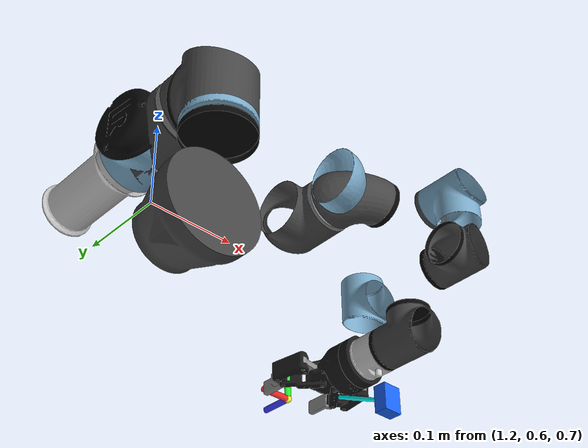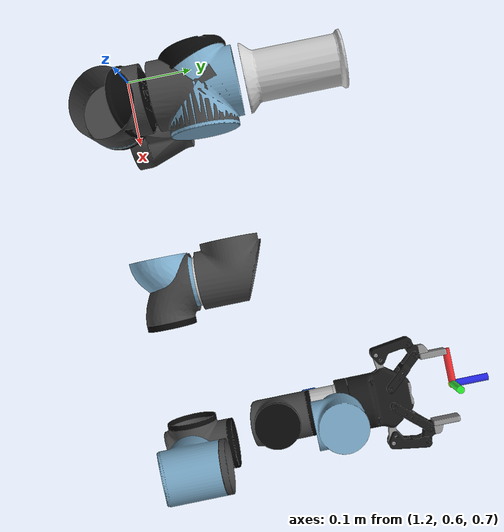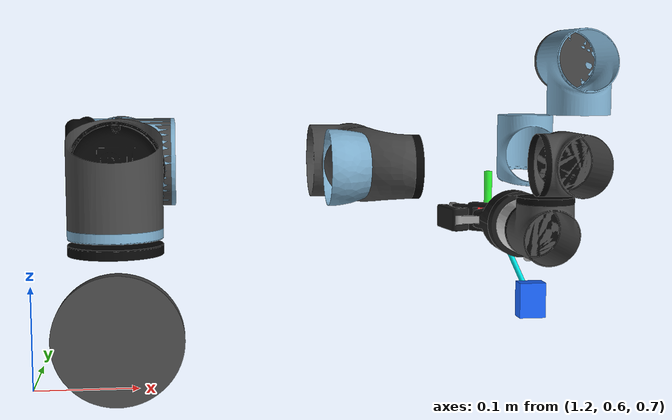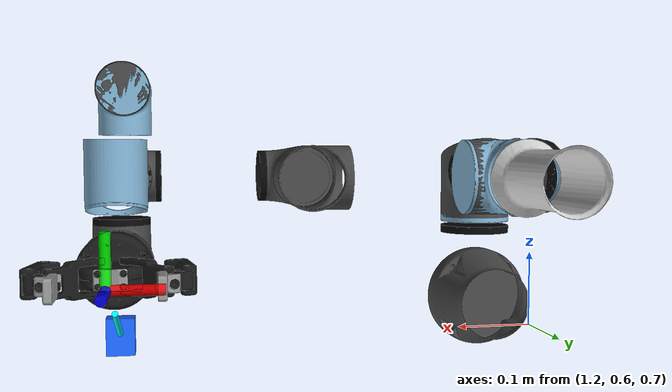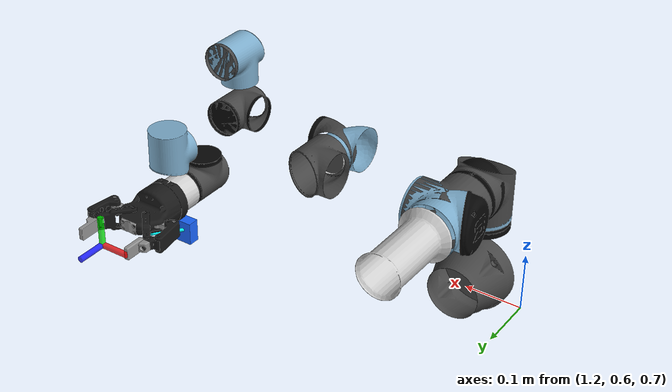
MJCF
<mujoco model="ur3e_robotiq">
  <compiler angle="radian" meshdir="." autolimits="true"/>

  <option integrator="implicitfast" impratio="10"/>

  <default>
    <!-- UR3E默认设置 -->
    <default class="ur3e">
      <material specular="0.5" shininess="0.25"/>
      <joint axis="0 1 0" range="-6.28319 6.28319" armature="0.1"/>
      <general gaintype="fixed" biastype="affine" ctrlrange="-6.2831 6.2831" gainprm="1000" biasprm="0 -1000 -200"/>
      <default class="size2">
        <general forcerange="-54 54"/>
      </default>
      <default class="size1">
        <default class="size1_limited">
          <joint range="-3.1415 3.1415"/>
          <general gainprm="500" biasprm="0 -500 -100" ctrlrange="-3.1415 3.1415" forcerange="-28 28"/>
        </default>
      </default>
      <default class="size0">
        <general gainprm="250" biasprm="0 -250 -50" forcerange="-9 9"/>
      </default>
      <default class="visual">
        <geom type="mesh" contype="0" conaffinity="0" group="2"/>
      </default>
      <default class="collision">
        <geom type="capsule" group="3"/>
        <default class="eef_collision">
          <geom type="cylinder"/>
        </default>
      </default>
      <site size="0.001" rgba="0.5 0.5 0.5 0.3" group="4"/>
    </default>

    <!-- Robotiq 2F85默认设置 -->
    <default class="2f85">
      <mesh scale="0.001 0.001 0.001"/>
      <general biastype="affine"/>
      <joint axis="0 0 1"/>
      <default class="driver">
        <joint range="0 0.9" armature="0.005" damping="0.1" solimplimit="0.95 0.99 0.001" solreflimit="0.005 1"/>
      </default>
      <default class="follower">
        <joint range="-0.872664 0.9" armature="0.001" solimplimit="0.95 0.99 0.001" solreflimit="0.005 1"/>
      </default>
      <default class="spring_link">
        <joint range="-0.29670597283 0.9" armature="0.001" stiffness="0.05" springref="2.62" damping="0.00125"/>
      </default>
      <default class="coupler">
        <joint range="-1.57 0" armature="0.001" solimplimit="0.95 0.99 0.001" solreflimit="0.005 1"/>
      </default>
      <default class="visual2">
        <geom type="mesh" contype="0" conaffinity="0" group="2" material="black"/>
      </default>
      <default class="collision2">
        <geom type="mesh" group="3"/>
        <default class="pad_box_0">
          <geom mass="1e-6" type="box" pos="0.043258 0 0.12" size="0.002 0.011 0.009375" friction="0.7"
                solimp="0.95 0.99 0.001" solref="0.004 1" priority="1" rgba="0.55 0.55 0.55 1"/>
        </default>
        <default class="pad_box_1">
          <geom mass="1e-6" type="box" pos="0.043258 0 0.13875" size="0.002 0.011 0.009375" friction="0.6"
                solimp="0.95 0.99 0.001" solref="0.004 1" priority="1" rgba="0.45 0.45 0.45 1"/>
        </default>
      </default>
    </default>
  </default>

  <asset>
    <!-- UR3E材质 -->
    <material class="ur3e" name="urblack" rgba="0.033 0.033 0.033 1"/>
    <material class="ur3e" name="jointgray" rgba="0.278 0.278 0.278 1"/>
    <material class="ur3e" name="linkgray" rgba="0.82 0.82 0.82 1"/>
    <material class="ur3e" name="urblue" rgba="0.49 0.678 0.8 1"/>

    <!-- Robotiq材质 -->
    <material name="metal" rgba="0.58 0.58 0.58 1"/>
    <material name="silicone" rgba="0.1882 0.1882 0.1882 1"/>
    <material name="black" specular="0.5" shininess="0.25" rgba="0.1 0.1 0.1 1"/>

    <!-- UR3E网格 -->
    <mesh file="../ur3e/assets/base_0.obj"/>
    <mesh file="../ur3e/assets/base_1.obj"/>
    <mesh file="../ur3e/assets/shoulder_0.obj"/>
    <mesh file="../ur3e/assets/shoulder_1.obj"/>
    <mesh file="../ur3e/assets/shoulder_2.obj"/>
    <mesh file="../ur3e/assets/upperarm_0.obj"/>
    <mesh file="../ur3e/assets/upperarm_1.obj"/>
    <mesh file="../ur3e/assets/upperarm_2.obj"/>
    <mesh file="../ur3e/assets/upperarm_3.obj"/>
    <mesh file="../ur3e/assets/forearm_0.obj"/>
    <mesh file="../ur3e/assets/forearm_1.obj"/>
    <mesh file="../ur3e/assets/forearm_2.obj"/>
    <mesh file="../ur3e/assets/forearm_3.obj"/>
    <mesh file="../ur3e/assets/wrist1_0.obj"/>
    <mesh file="../ur3e/assets/wrist1_1.obj"/>
    <mesh file="../ur3e/assets/wrist1_2.obj"/>
    <mesh file="../ur3e/assets/wrist2_0.obj"/>
    <mesh file="../ur3e/assets/wrist2_1.obj"/>
    <mesh file="../ur3e/assets/wrist2_2.obj"/>
    <mesh file="../ur3e/assets/wrist3.obj"/>

    <!-- Robotiq 2F85网格 -->
    <mesh name="robotiq_base" file="../robotiq_2f85_v4/assets/base.stl"/>
    <mesh name="robotiq_base_coupling" file="../robotiq_2f85_v4/assets/base_coupling.stl"/>
    <mesh name="robotiq_open_body" file="../robotiq_2f85_v4/assets/c-a01-85-open.stl"/>
    <mesh name="robotiq_driver" file="../robotiq_2f85_v4/assets/driver.stl"/>
    <mesh name="robotiq_coupler" file="../robotiq_2f85_v4/assets/coupler.stl"/>
    <mesh name="robotiq_spring_link" file="../robotiq_2f85_v4/assets/spring_link.stl"/>
    <mesh name="robotiq_follower" file="../robotiq_2f85_v4/assets/follower.stl"/>
    <mesh name="robotiq_tongue" file="../robotiq_2f85_v4/assets/tongue.stl"/>
  </asset>

  <worldbody>
    <light name="spotlight" mode="targetbodycom" target="wrist_2_link" pos="0 -1 2"/>
    <body name="ur3e_base" pos="1.28 0.6 0.745" quat="1 0 0 0" childclass="ur3e">
      <inertial mass="2.0" pos="0 0 0" diaginertia="0.0030531654454 0.0030531654454 0.005625"/>
      <geom mesh="base_0" material="urblack" class="visual"/>
      <geom mesh="base_1" material="jointgray" class="visual"/>

      <body name="shoulder_link" pos="0 0 0.163">
        <inertial mass="2.0" pos="0 0 0" diaginertia="0.008093163429399999 0.008093163429399999 0.005625"/>
        <joint name="shoulder_pan_joint" class="size2" axis="0 0 1"/>
        <geom mesh="shoulder_0" material="urblue" class="visual"/>
        <geom mesh="shoulder_1" material="urblack" class="visual"/>
        <geom mesh="shoulder_2" material="jointgray" class="visual"/>
        <geom class="collision" size="0.05 0.05" pos="0 0 -0.04"/>

        <body name="upper_arm_link" pos="0 0.12 0" quat="1 0 1 0">
          <inertial mass="3.42" pos="0 0 0.121825" diaginertia="0.021728483221103233 0.021728483221103233 0.00961875"/>
          <joint name="shoulder_lift_joint" class="size2"/>
          <geom mesh="upperarm_0" material="urblack" class="visual"/>
          <geom mesh="upperarm_1" material="urblue" class="visual"/>
          <geom mesh="upperarm_2" material="jointgray" class="visual"/>
          <geom mesh="upperarm_3" material="linkgray" class="visual"/>
          <geom class="collision" pos="0 -0.04 0" quat="1 1 0 0" size="0.05 0.05"/>
          <geom class="collision" size="0.04 0.1" pos="0 0 0.1"/>

          <body name="forearm_link" pos="0 -0.093 0.24355">
            <inertial mass="1.26" pos="0 0 0.1066" diaginertia="0.0065445675821719194 0.0065445675821719194 0.00354375"/>
            <joint name="elbow_joint" class="size1_limited"/>
            <geom mesh="forearm_0" material="urblue" class="visual"/>
            <geom mesh="forearm_1" material="linkgray" class="visual"/>
            <geom mesh="forearm_2" material="urblack" class="visual"/>
            <geom mesh="forearm_3" material="jointgray" class="visual"/>
            <geom class="collision" pos="0 0.06 0" quat="1 1 0 0" size="0.04 0.052"/>
            <geom class="collision" size="0.03 0.1" pos="0 0 0.1"/>

            <body name="wrist_1_link" pos="0 0 0.2132" quat="1 0 1 0">
              <inertial mass="0.8" pos="0 0.104 0" diaginertia="0.002084999166 0.002084999166 0.00225"/>
              <joint name="wrist_1_joint" class="size0"/>
              <geom mesh="wrist1_0" material="urblack" class="visual"/>
              <geom mesh="wrist1_1" material="urblue" class="visual"/>
              <geom mesh="wrist1_2" material="jointgray" class="visual"/>
              <geom class="collision" pos="0 0.03 0" quat="1 1 0 0" size="0.032 0.045"/>

              <body name="wrist_2_link" pos="0 0.104 0">
                <inertial mass="0.8" pos="0 0 0.1" diaginertia="0.002084999166 0.002084999166 0.00225"/>
                <joint name="wrist_2_joint" axis="0 0 1" class="size0"/>
                <geom mesh="wrist2_0" material="urblue" class="visual"/>
                <geom mesh="wrist2_1" material="urblack" class="visual"/>
                <geom mesh="wrist2_2" material="jointgray" class="visual"/>
                <geom class="collision" size="0.032 0.045" pos="0 0 0.025"/>
                <geom class="collision" pos="0 0.015 0.085" quat="1 1 0 0" size="0.032 0.035"/>

                <body name="wrist_3_link" pos="0 0 0.08535">
                  <inertial mass="0.35" pos="0 0.0771683 0" quat="1 0 0 1"
                    diaginertia="0.00013626661215999998 0.00013626661215999998 0.0001792"/>
                  <joint name="wrist_3_joint" class="size0"/>
                  <geom material="linkgray" mesh="wrist3" class="visual"/>

                  <!-- 腕部手眼相机（安装在 wrist_3_link 上） -->
                  <body name="hand_camera_link" pos="0 0.05 0.08">
                    <!-- 蓝色小盒：相机机身 -->
                    <geom name="hand_cam_body" type="box" size="0.015 0.010 0.020"
                          rgba="0.1 0.4 1.0 1.0" contype="0" conaffinity="0" group="2" density="0"/>
                    <!-- 青色细线：视线方向（朝指尖方向 (0,+Y,-Z)） -->
                    <geom name="hand_cam_dir" type="cylinder" fromto="0 0 0  0 0.09 -0.04"
                          size="0.003" rgba="0 1 1 1.0" contype="0" conaffinity="0" group="2" density="0"/>
                    <!-- 红色小点：光心 -->
                    <geom name="hand_cam_origin" type="sphere" size="0.006"
                          rgba="1 0 0 1.0" contype="0" conaffinity="0" group="2" density="0"/>
                    <camera name="hand_camera" mode="fixed" fovy="60" xyaxes="1 0 0  0 0.38 0.92"/>
                  </body>

                  <!-- Robotiq 2F85机械手安装在UR3E末端 -->
                  <body name="robotiq_base" pos="0 0.09 0" euler="-1.57 0 0" childclass="2f85">
                    <inertial mass="0.777441" pos="0 -2.70394e-05 0.0354675" quat="1 -0.00152849 0 0"
                              diaginertia="0.000260285 0.000225381 0.000152708"/>
                    <geom class="visual2" pos="0 0 0.0108" quat="0 0 0 1" mesh="robotiq_base"/>
                    <geom class="visual2" pos="0 0 0.004" quat="1 -1 0 0" mesh="robotiq_base_coupling"/>
                    <geom class="visual2" pos="0 0 0.0108" quat="1 0 0 0" material="metal" mesh="robotiq_open_body"/>
                    <geom class="collision2" mesh="robotiq_base"/>

                    <!-- TCP: 两指抓取中心，z 沿夹爪进入方向 -->
                    <body name="gripper_tcp" pos="0 0 0.16">
                      <site name="gripper_tcp_site" pos="0 0 0" size="0.006" rgba="1 1 0 0.8" group="2"/>
                      <!-- 可视化 TCP 坐标系 (长度设为 5cm，粗细为 2mm) -->
                      <!-- X 轴 (红色) -->
                      <geom name="tcp_x" type="cylinder" fromto="0 0 0  0.05 0 0" size="0.005" rgba="1 0 0 0.8" contype="0" conaffinity="0" group="2"/>
                      <!-- Y 轴 (绿色) -->
                      <geom name="tcp_y" type="cylinder" fromto="0 0 0  0 0.05 0" size="0.005" rgba="0 1 0 0.8" contype="0" conaffinity="0" group="2"/>
                      <!-- Z 轴 (蓝色) -->
                      <geom name="tcp_z" type="cylinder" fromto="0 0 0  0 0 0.05" size="0.005" rgba="0 0 1 0.8" contype="0" conaffinity="0" group="2"/>
                    </body>

                    <body name="left_driver" pos="-0.0306011 0.00475 0.0657045" quat="1 -1 0 0">
                      <inertial mass="0.00899563" pos="0 0.0177547 0.00107314" quat="0.681301 0.732003 0 0"
                                diaginertia="1.72352e-06 1.60906e-06 3.22006e-07"/>
                      <joint name="left_driver_joint" class="driver"/>
                      <geom class="visual2" pos="0.0306011 0.0549045 -0.0047" quat="1 1 0 0" material="metal" mesh="robotiq_driver"/>
                      <geom class="collision2" pos="0.0306011 0.0549045 -0.0047" quat="1 1 0 0" mesh="robotiq_driver"/>
                      <body name="left_coupler" pos="-0.0314249 0.00453223 -0.0102" quat="0 0 0 1">
                        <inertial mass="0.0140974" pos="0 0.00301209 0.0232175" quat="0.705636 -0.0455904 0.0455904 0.705636"
                                  diaginertia="4.16206e-06 3.52216e-06 8.88131e-07"/>
                        <geom class="visual2" pos="-0.062026 -0.0503723 0.0055" quat="1 -1 0 0" mesh="robotiq_coupler"/>
                        <geom class="collision2" pos="-0.062026 -0.0503723 0.0055" quat="1 -1 0 0" mesh="robotiq_coupler"/>
                      </body>
                    </body>

                    <body name="left_spring_link" pos="-0.0127 -0.012 0.07222" quat="1 -1 0 0">
                      <inertial mass="0.0221642" pos="-8.65005e-09 0.0181624 0.0212658" quat="0.663403 -0.244737 0.244737 0.663403"
                                diaginertia="8.96853e-06 6.71733e-06 2.63931e-06"/>
                      <joint name="left_spring_link_joint" class="spring_link"/>
                      <geom class="visual2" pos="0.0127 0.06142 0.01205" quat="1 1 0 0" mesh="robotiq_spring_link"/>
                      <geom class="collision2" pos="0.0127 0.06142 0.01205" quat="1 1 0 0" mesh="robotiq_spring_link"/>
                      <body name="left_follower" pos="-0.0382079 -0.0425003 0.00295" quat="0 -1 -1.90231e-05 0">
                        <inertial mass="0.0125222" pos="0 -0.011046 0.0124786" quat="1 0.1664 0 0"
                                  diaginertia="2.67415e-06 2.4559e-06 6.02031e-07"/>
                        <joint name="left_follower_joint" class="follower"/>
                        <geom class="visual2" pos="0.0509079 -0.10392 -0.0091" quat="1 -1 0 0" mesh="robotiq_follower"/>
                        <geom class="visual2" pos="0.0509079 -0.10392 -0.0091" quat="1 -1 0 0" material="metal" mesh="robotiq_tongue"/>
                        <geom class="collision2" pos="0.0509079 -0.10392 -0.0091" quat="1 -1 0 0" mesh="robotiq_follower"/>
                        <geom class="collision2" pos="0.0509079 -0.10392 -0.0091" quat="1 -1 0 0" mesh="robotiq_tongue"/>
                        <body name="left_pad" pos="-0.0377897 -0.103916 -0.0091" quat="1 -1 0 0">
                          <geom class="pad_box_0" name="left_pad1"/>
                          <geom class="pad_box_1" name="left_pad2"/>
                        </body>
                      </body>
                    </body>

                    <body name="right_driver" pos="0.0306011 -0.00475 0.0657045" quat="0 0 -1 1">
                      <inertial mass="0.00899563" pos="2.96931e-12 0.0177547 0.00107314" quat="0.681301 0.732003 0 0"
                                diaginertia="1.72352e-06 1.60906e-06 3.22006e-07"/>
                      <joint name="right_driver_joint" class="driver"/>
                      <geom class="visual2" pos="0.0306011 0.0549045 -0.0047" quat="1 1 0 0" material="metal" mesh="robotiq_driver"/>
                      <geom class="collision2" pos="0.0306011 0.0549045 -0.0047" quat="1 1 0 0" mesh="robotiq_driver"/>
                      <body name="right_coupler" pos="-0.0314249 0.00453223 -0.0102" quat="0 0 0 1">
                        <inertial mass="0.0140974" pos="0 0.00301209 0.0232175" quat="0.705636 -0.0455904 0.0455904 0.705636"
                                  diaginertia="4.16206e-06 3.52216e-06 8.88131e-07"/>
                        <geom class="visual2" pos="-0.062026 -0.0503723 0.0055" quat="1 -1 0 0" mesh="robotiq_coupler"/>
                        <geom class="collision2" pos="-0.062026 -0.0503723 0.0055" quat="1 -1 0 0" mesh="robotiq_coupler"/>
                      </body>
                    </body>

                    <body name="right_spring_link" pos="0.0127 0.012 0.07222" quat="0 0 -1 1">
                      <inertial mass="0.0221642" pos="-8.65005e-09 0.0181624 0.0212658" quat="0.663403 -0.244737 0.244737 0.663403"
                                diaginertia="8.96853e-06 6.71733e-06 2.63931e-06"/>
                      <joint name="right_spring_link_joint" class="spring_link"/>
                      <geom class="visual2" pos="0.0127 0.06142 0.01205" quat="1 1 0 0" mesh="robotiq_spring_link"/>
                      <geom class="collision2" pos="0.0127 0.06142 0.01205" quat="1 1 0 0" mesh="robotiq_spring_link"/>
                      <body name="right_follower" pos="-0.0382079 -0.0425003 0.00295" quat="0 -1 0 0">
                        <inertial mass="0.0125222" pos="0 -0.011046 0.0124786" quat="1 0.1664 0 0"
                                  diaginertia="2.67415e-06 2.4559e-06 6.02031e-07"/>
                        <joint name="right_follower_joint" class="follower"/>
                        <geom class="visual2" pos="0.0509079 -0.10392 -0.0091" quat="1 -1 0 0" material="metal" mesh="robotiq_tongue"/>
                        <geom class="visual2" pos="0.0509079 -0.10392 -0.0091" quat="1 -1 0 0" mesh="robotiq_follower"/>
                        <geom class="collision2" pos="0.0509079 -0.10392 -0.0091" quat="1 -1 0 0" mesh="robotiq_tongue"/>
                        <geom class="collision2" pos="0.0509079 -0.10392 -0.0091" quat="1 -1 0 0" mesh="robotiq_follower"/>
                        <body name="right_pad" pos="-0.0377897 -0.103916 -0.0091" quat="1 -1 0 0">
                          <geom class="pad_box_0" name="right_pad1"/>
                          <geom class="pad_box_1" name="right_pad2"/>
                        </body>
                      </body>
                    </body>
                  </body>
                </body>
              </body>
            </body>
          </body>
        </body>
      </body>
    </body>
  </worldbody>

  <!-- 碰撞排除配置 -->
  <contact>
    <!-- UR3E内部碰撞排除 -->

    <!-- Robotiq内部碰撞排除 -->
    <exclude body1="robotiq_base" body2="left_driver"/>
    <exclude body1="robotiq_base" body2="right_driver"/>
    <exclude body1="robotiq_base" body2="left_spring_link"/>
    <exclude body1="robotiq_base" body2="right_spring_link"/>
    <exclude body1="right_coupler" body2="right_follower"/>
    <exclude body1="left_coupler" body2="left_follower"/>

    <!-- 跨系统碰撞排除 -->
    <exclude body1="wrist_3_link" body2="robotiq_base"/>
    <exclude body1="wrist_3_link" body2="left_driver"/>
    <exclude body1="wrist_3_link" body2="right_driver"/>
    <exclude body1="wrist_3_link" body2="left_spring_link"/>
    <exclude body1="wrist_3_link" body2="right_spring_link"/>
  </contact>

  <!-- Robotiq腱传动系统 -->
  <tendon>
    <fixed name="split">
      <joint joint="right_driver_joint" coef="0.485"/>
      <joint joint="left_driver_joint" coef="0.485"/>
    </fixed>
  </tendon>

  <!-- Robotiq等式约束 -->
  <equality>
    <connect anchor="-0.0179014 -0.00651468 0.0044" body1="right_follower" body2="right_coupler" solimp="0.95 0.99 0.001" solref="0.005 1"/>
    <connect anchor="-0.0179014 -0.00651468 0.0044" body1="left_follower" body2="left_coupler" solimp="0.95 0.99 0.001" solref="0.005 1"/>
    <joint joint1="right_driver_joint" joint2="left_driver_joint" polycoef="0 1 0 0 0" solimp="0.95 0.99 0.001" solref="0.005 1"/>
  </equality>

  <!-- 驱动器配置 -->
  <actuator>
    <!-- UR3E驱动器 -->
    <general class="size2" name="shoulder_pan" joint="shoulder_pan_joint"/>
    <general class="size2" name="shoulder_lift" joint="shoulder_lift_joint"/>
    <general class="size1_limited" name="elbow" joint="elbow_joint"/>
    <general class="size0" name="wrist_1" joint="wrist_1_joint"/>
    <general class="size0" name="wrist_2" joint="wrist_2_joint"/>
    <general class="size0" name="wrist_3" joint="wrist_3_joint"/>

    <!-- Robotiq驱动器：保持 0~0.6 控制范围，兼容现有 teleop trigger 映射 -->
    <general class="2f85" name="fingers_actuator" tendon="split" forcerange="-50 50" ctrlrange="0 0.6"
             gainprm="133.333333 0 0" biasprm="0 -100 -10"/>
  </actuator>
</mujoco>
